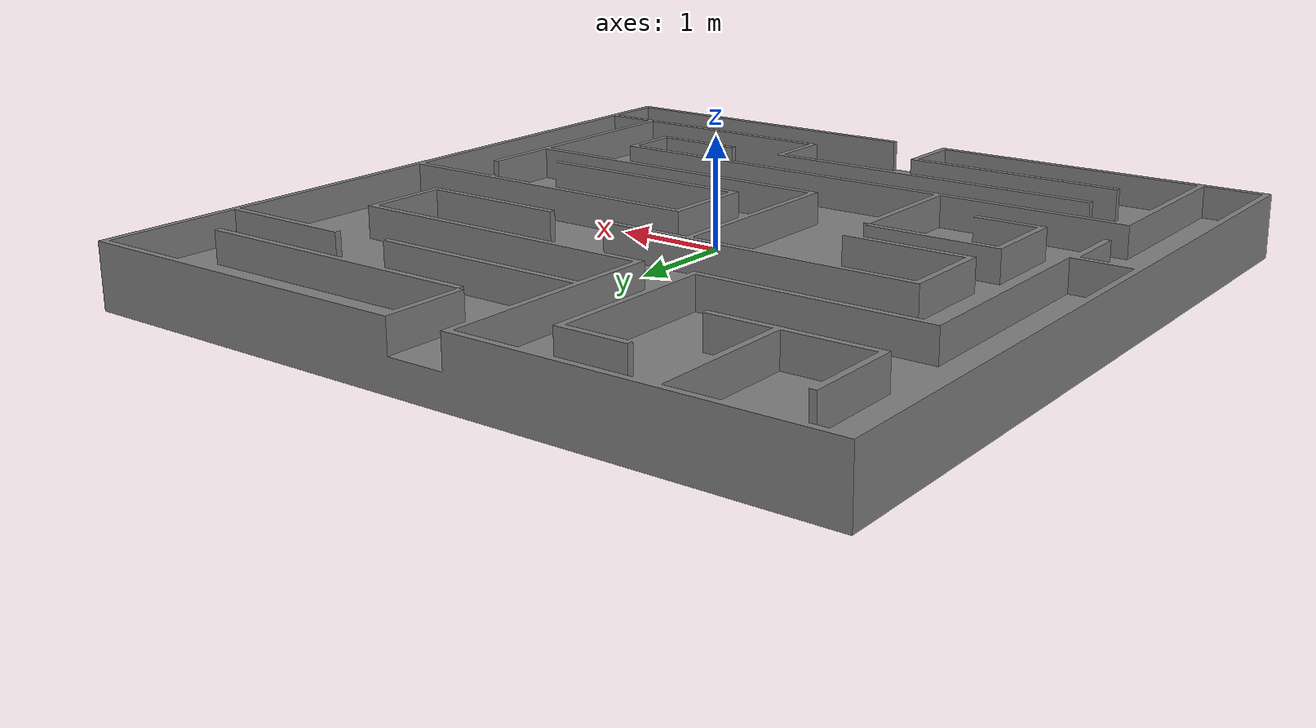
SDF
<?xml version="1.0" ?>
<sdf version="1.8">
  <model name="custom_maze">
    <static>true</static>
    <link name="link">

      <pose>0 0 0.001 -1.5708 0 0</pose>

      <collision name="collision">
        <geometry>
          <mesh>
            <uri>model://custom_maze/meshes/maze.stl</uri>
            <scale>12 12 12</scale>
          </mesh>
        </geometry>
      </collision>

      <visual name="visual">
        <geometry>
          <mesh>
            <uri>model://custom_maze/meshes/maze.stl</uri>
            <scale>12 12 12</scale>
          </mesh>
        </geometry>
        <material>
          <ambient>0.5 0.5 0.5 1</ambient>
          <diffuse>0.5 0.5 0.5 1</diffuse>
        </material>
      </visual>

    </link>
  </model>
</sdf>
